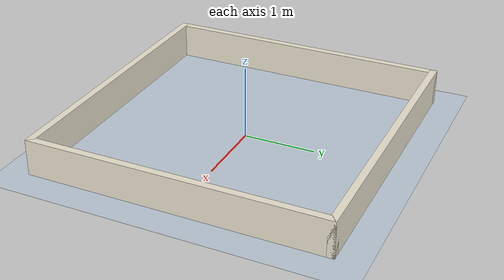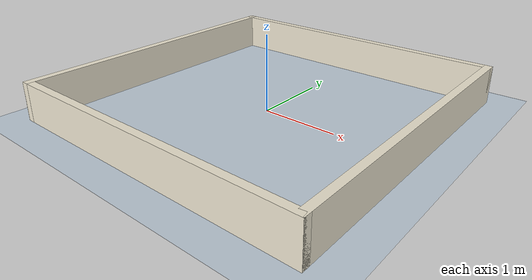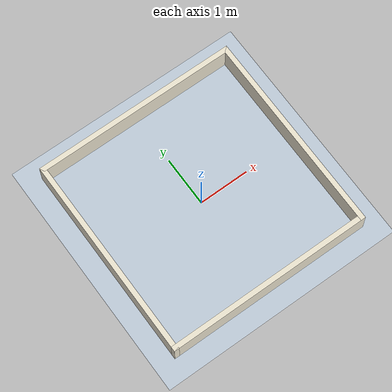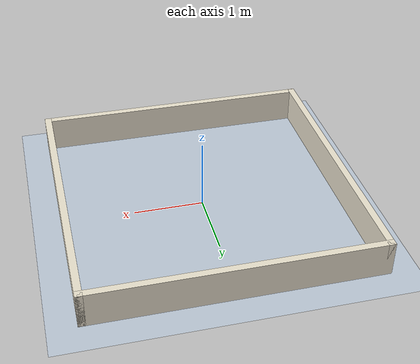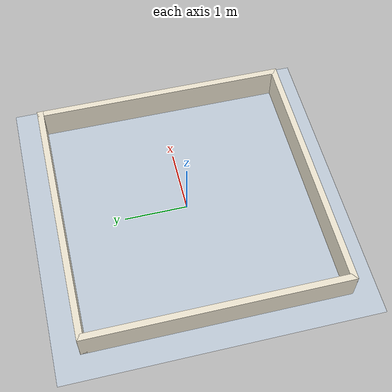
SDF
<?xml version="1.0"?>
<sdf version="1.9">
  <world name="slippery_room">
    <physics name="1ms" type="ignored">
      <max_step_size>0.001</max_step_size>
      <real_time_factor>1.0</real_time_factor>
    </physics>

    <plugin filename="gz-sim-physics-system" name="gz::sim::systems::Physics"/>
    <plugin filename="gz-sim-user-commands-system" name="gz::sim::systems::UserCommands"/>
    <plugin filename="gz-sim-scene-broadcaster-system" name="gz::sim::systems::SceneBroadcaster"/>
    <plugin filename="gz-sim-sensors-system" name="gz::sim::systems::Sensors">
      <render_engine>ogre2</render_engine>
    </plugin>
    <plugin filename="gz-sim-imu-system" name="gz::sim::systems::Imu"/>

    <gravity>0 0 -9.8</gravity>
    <scene>
      <ambient>0.6 0.6 0.6 1</ambient>
      <background>0.8 0.85 0.9 1</background>
      <grid>false</grid>
    </scene>

    <light type="directional" name="sun">
      <cast_shadows>true</cast_shadows>
      <pose>0 0 10 0 0 0</pose>
      <diffuse>0.9 0.9 0.9 1</diffuse>
      <direction>-0.5 0.1 -0.9</direction>
    </light>

    <!-- The one changed number in the whole file: floor friction. -->
    <model name="ground_plane">
      <static>true</static>
      <link name="link">
        <collision name="collision">
          <geometry><plane><normal>0 0 1</normal><size>100 100</size></plane></geometry>
          <surface><friction><ode><mu>0.01</mu><mu2>0.01</mu2></ode></friction></surface>
        </collision>
        <visual name="visual">
          <geometry><plane><normal>0 0 1</normal><size>100 100</size></plane></geometry>
          <material><ambient>0.75 0.8 0.85 1</ambient><diffuse>0.75 0.8 0.85 1</diffuse></material>
        </visual>
      </link>
    </model>

    <!-- Four walls at +-2 m so the LiDAR has something to see. -->
    <model name="walls">
      <static>true</static>
      <link name="link">
        <collision name="north"><pose>0 2 0.25 0 0 0</pose>
          <geometry><box><size>4.1 0.1 0.5</size></box></geometry></collision>
        <visual name="north_v"><pose>0 2 0.25 0 0 0</pose>
          <geometry><box><size>4.1 0.1 0.5</size></box></geometry>
          <material><ambient>0.93 0.9 0.82 1</ambient><diffuse>0.93 0.9 0.82 1</diffuse></material></visual>
        <collision name="south"><pose>0 -2 0.25 0 0 0</pose>
          <geometry><box><size>4.1 0.1 0.5</size></box></geometry></collision>
        <visual name="south_v"><pose>0 -2 0.25 0 0 0</pose>
          <geometry><box><size>4.1 0.1 0.5</size></box></geometry>
          <material><ambient>0.93 0.9 0.82 1</ambient><diffuse>0.93 0.9 0.82 1</diffuse></material></visual>
        <collision name="east"><pose>2 0 0.25 0 0 0</pose>
          <geometry><box><size>0.1 4.1 0.5</size></box></geometry></collision>
        <visual name="east_v"><pose>2 0 0.25 0 0 0</pose>
          <geometry><box><size>0.1 4.1 0.5</size></box></geometry>
          <material><ambient>0.93 0.9 0.82 1</ambient><diffuse>0.93 0.9 0.82 1</diffuse></material></visual>
        <collision name="west"><pose>-2 0 0.25 0 0 0</pose>
          <geometry><box><size>0.1 4.1 0.5</size></box></geometry></collision>
        <visual name="west_v"><pose>-2 0 0.25 0 0 0</pose>
          <geometry><box><size>0.1 4.1 0.5</size></box></geometry>
          <material><ambient>0.93 0.9 0.82 1</ambient><diffuse>0.93 0.9 0.82 1</diffuse></material></visual>
      </link>
    </model>

  </world>
</sdf>
